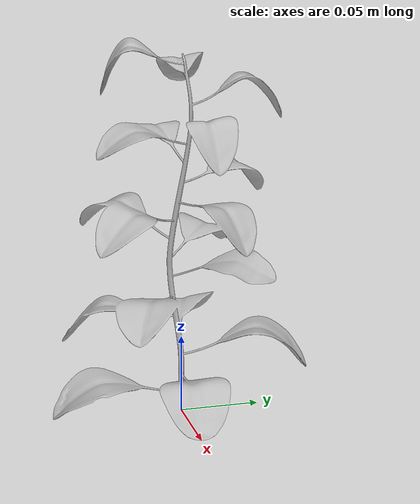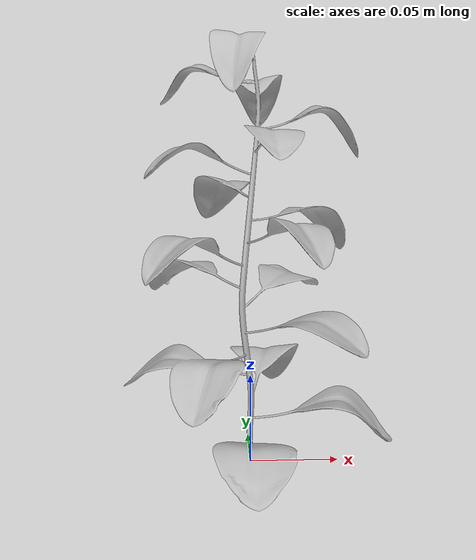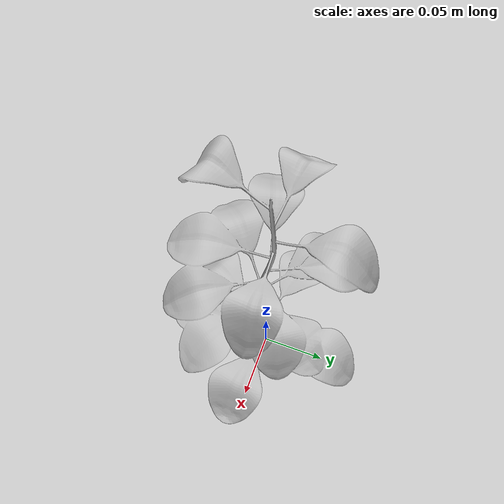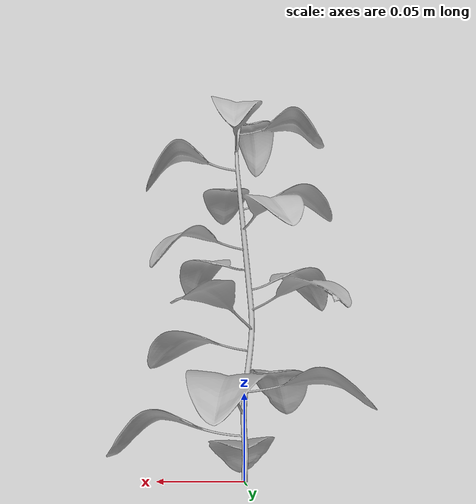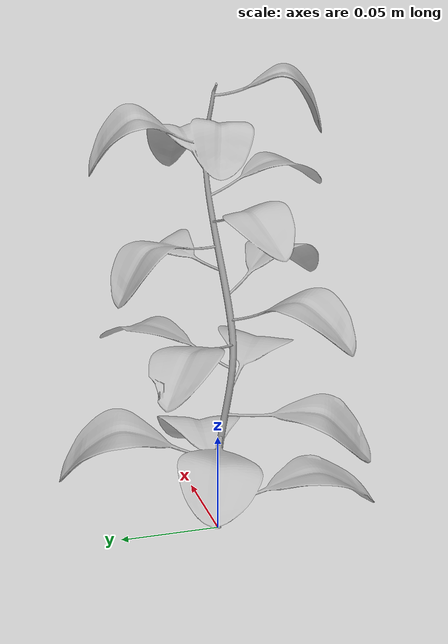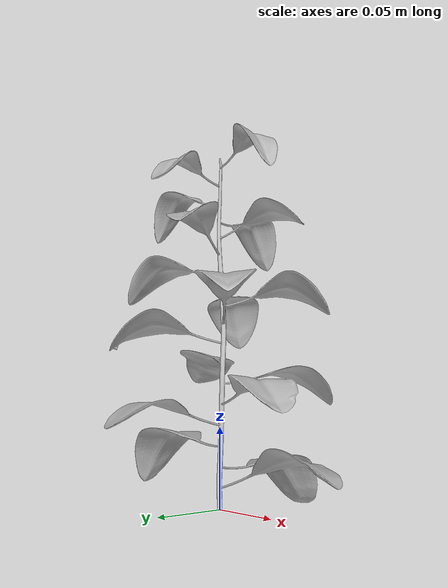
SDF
<?xml version="1.0" ?>
<sdf version='1.4'>
  <model name="plant">
      <static>1</static>
        <link name='link_1'>
            <visual name='visual'>
            <pose frame=''>0 0 0 0 0 0</pose>
            <geometry>
            <mesh>
                <uri>model://plant/meshes/plant_pro.dae</uri>
                <scale>1 1 1</scale>
            </mesh>
            </geometry>
            <cast_shadows>0</cast_shadows>
            <transparency>0</transparency>
        </visual>

        <collision name='collision'>
            <laser_retro>0</laser_retro>
            <pose frame=''>0 0 0 0 0 0</pose>
            <geometry>
            <mesh>
                <uri>model://plant/meshes/plant.stl</uri>
                <scale>1 1 1</scale>
            </mesh>
            </geometry>
        </collision>
        </link>
  </model>
</sdf>
